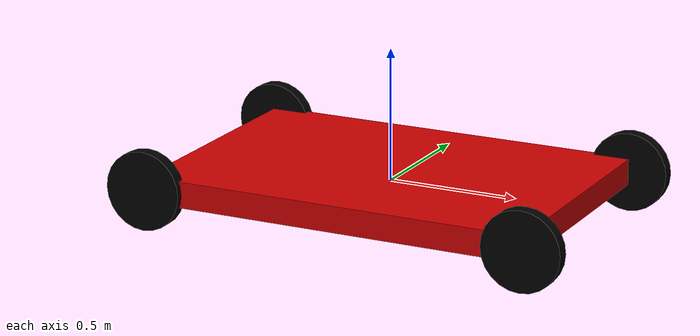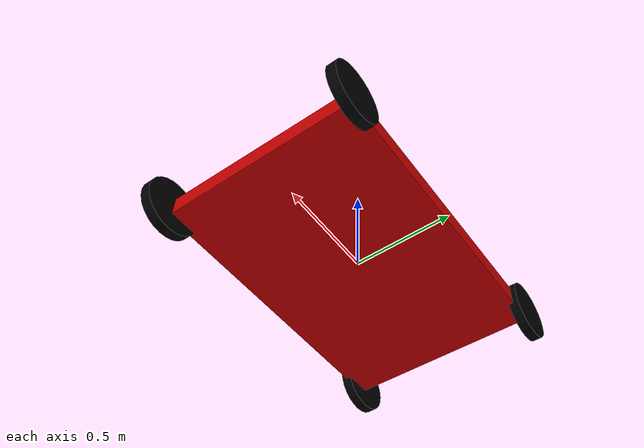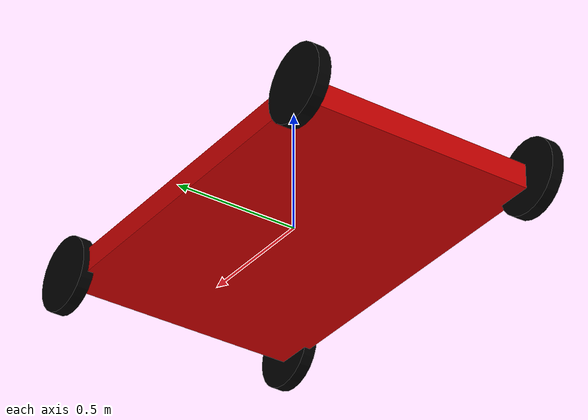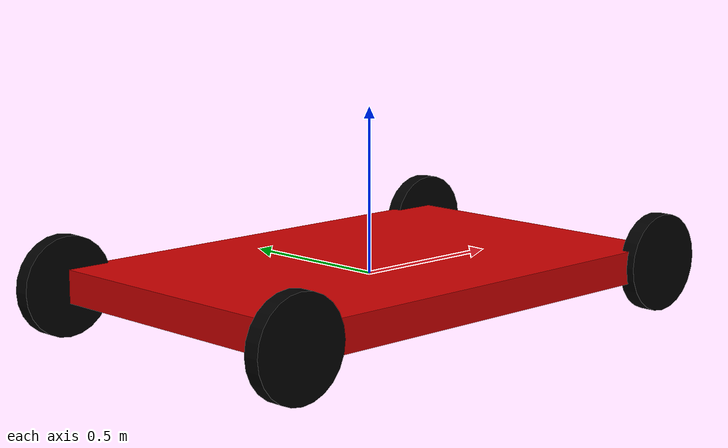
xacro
<?xml version="1.0"?>
<!-- Basic differential drive mobile base -->
<robot xmlns:xacro="http://www.ros.org/wiki/xacro" name="gripper_robot">
    <xacro:arg name="prefix" default="" />

    <!-- Include the diffbot_description.urdf.xacro -->
    <xacro:include
        filename="$(find bots_description)/ackerman/urdf/ackerman.urdf.xacro" />
    <!-- Import Rviz colors -->
    <xacro:include
        filename="$(find bots_description)/common/urdf/materials.xacro" />

    <link name="motor"/>
    <link name="steering"/>
    <joint name="motor_joint" type="revolute">
        <origin xyz="0 0 0" rpy="0 0 0"/>
        <parent link="base_link"/>
        <child link="motor"/>
        <axis xyz="0 0 1"/>
        <limit lower="-3.14159" upper="3.14159" effort="100" velocity="1"/>

    </joint>
    <joint name="steering_joint" type="revolute">
        <origin xyz="0 0 0" rpy="0 0 0"/>
        <parent link="base_link"/>
        <child link="steering"/>
        <axis xyz="0 0 1"/>
        <limit lower="-3.14159" upper="3.14159" effort="100" velocity="1"/>
    </joint>

  <!-- Tu definición de robot -->

  <!-- Etiqueta ros2_control -->
  <ros2_control name="AckermannHardware" type="system">
    <hardware>
      <plugin>yb_eb/YbEbHw</plugin>

        <param name = "motor_name">motor_joint</param>
        <param name = "steering_name">steering_joint</param>
        <param name = "debug">false</param>
        <param name = "max_forward_motor"> 98.0</param>
        <param name = "min_forward_motor"> 91.0</param>
        <param name = "max_reverse_motor"> 89.0</param>
        <param name = "min_reverse_motor"> 76.0</param>
        <param name = "max_ang_steering"> 115.0</param>
        <param name = "min_ang_steering"> 65.0</param>
        <param name = "create_receive_threading">false</param>

    </hardware>

        <joint name="steering_joint">
          <!-- Command interface to control velocity -->
          <command_interface name="position">
          </command_interface>
          <!-- State interfaces to read position and velocity -->
          <state_interface name="position" >
            </state_interface>
          <state_interface name="velocity" >
            </state_interface>
      </joint>

       <joint name="motor_joint">
          <!-- Command interface to control velocity -->
          <command_interface name="velocity">
          </command_interface>
          <!-- State interfaces to read position and velocity -->
          <state_interface name="position" >
            </state_interface>
          <state_interface name="velocity" >
            </state_interface>
        </joint>
  </ros2_control>

    <!-- Otras definiciones de links y joints -->

</robot>

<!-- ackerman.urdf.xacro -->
<robot name="ackermann_robot" xmlns:xacro="http://www.ros.org/wiki/xacro">

  <!-- Propiedades -->
  <xacro:property name="wheel_radius" value="0.15"/>
  <xacro:property name="wheel_width" value="0.05"/>
  <xacro:property name="wheel_separation" value="1.0"/>
  <xacro:property name="wheelbase" value="1.5"/>
  <xacro:property name="chassis_mass" value="20.0"/>
  <xacro:property name="wheel_mass" value="1.0"/>
  <xacro:property name="PI" value="3.14159265359"/>
  <!-- Chasis -->
  <link name="base_link"/>
<!-- chasis link -->
  <link name="chasis_link">
      <visual>
      <geometry>
        <box size="${wheelbase} ${wheel_separation} 0.1"/>
      </geometry>
      <material name="red"/>
    </visual>
    <collision>
      <geometry>
        <box size="${wheelbase} ${wheel_separation} 0.1"/>
      </geometry>
    </collision>
    <inertial>
      <mass value="${chassis_mass}"/>
      <origin xyz="0 0 0"/>
      <inertia ixx="0.5" ixy="0.0" ixz="0.0" iyy="0.5" iyz="0.0" izz="0.5"/>
    </inertial>
  </link>

  <joint name="chasis_joint" type="fixed">
    <parent link="base_link"/>
    <child link="chasis_link"/>
    <origin xyz="0 0 0" rpy="0 0 0"/>
  </joint>

  <!-- Ruedas Traseras -->
  <link name="left_rear_wheel">
    <visual>
      <geometry>
        <cylinder length="${wheel_width}" radius="${wheel_radius}"/>
      </geometry>
      <material name="black"/>
    </visual>
    <collision>
      <geometry>
        <cylinder length="${wheel_width}" radius="${wheel_radius}"/>
      </geometry>
    </collision>
    <inertial>
      <mass value="${wheel_mass}"/>
      <origin xyz="0 0 0"/>
      <inertia ixx="0.01" ixy="0.0" ixz="0.0" iyy="0.01" iyz="0.0" izz="0.01"/>
    </inertial>
  </link>
  <link name="right_rear_wheel">
    <visual>
      <geometry>
        <cylinder length="${wheel_width}" radius="${wheel_radius}"/>
      </geometry>
      <material name="black"/>
    </visual>
    <collision>
      <geometry>
        <cylinder length="${wheel_width}" radius="${wheel_radius}"/>
      </geometry>
    </collision>
    <inertial>
      <mass value="${wheel_mass}"/>
      <origin xyz="0 0 0"/>
      <inertia ixx="0.01" ixy="0.0" ixz="0.0" iyy="0.01" iyz="0.0" izz="0.01"/>
    </inertial>
  </link>

  <!-- Ruedas Delanteras -->
  <link name="left_front_wheel">
    <visual>
      <geometry>
        <cylinder length="${wheel_width}" radius="${wheel_radius}"/>
      </geometry>
      <material name="black"/>
    </visual>
    <collision>
      <geometry>
        <cylinder length="${wheel_width}" radius="${wheel_radius}"/>
      </geometry>
    </collision>
    <inertial>
      <mass value="${wheel_mass}"/>
      <origin xyz="0 0 0"/>
      <inertia ixx="0.01" ixy="0.0" ixz="0.0" iyy="0.01" iyz="0.0" izz="0.01"/>
    </inertial>
  </link>
  <link name="right_front_wheel">
    <visual>
      <geometry>
        <cylinder length="${wheel_width}" radius="${wheel_radius}"/>
      </geometry>
      <material name="black"/>
    </visual>
    <collision>
      <geometry>
        <cylinder length="${wheel_width}" radius="${wheel_radius}"/>
      </geometry>
    </collision>
    <inertial>
      <mass value="${wheel_mass}"/>
      <origin xyz="0 0 0"/>
      <inertia ixx="0.01" ixy="0.0" ixz="0.0" iyy="0.01" iyz="0.0" izz="0.01"/>
    </inertial>
  </link>

  <!-- Juntas de las Ruedas -->
  <joint name="left_rear_wheel_joint" type="continuous">
    <parent link="base_link"/>
    <child link="left_rear_wheel"/>
    <origin xyz="-${wheelbase / 2} ${wheel_separation / 2} 0" rpy="${PI/2} 0 0"/>
    <axis xyz="0 0 1"/>
  </joint>
  <joint name="right_rear_wheel_joint" type="continuous">
    <parent link="base_link"/>
    <child link="right_rear_wheel"/>
    <origin xyz="-${wheelbase / 2} -${wheel_separation / 2} 0 " rpy="${PI/2} 0 0"/>
    <axis xyz="0 0 1"/>
  </joint>
  <joint name="left_front_wheel_joint" type="revolute">
    <parent link="base_link"/>
    <child link="left_front_wheel"/>
    <origin xyz="${wheelbase / 2} ${wheel_separation / 2} 0" rpy="${PI/2} 0 0"/>
    <axis xyz="0 1 0"/>
    <limit effort="50.0" velocity="1.0" lower="-0.785" upper="0.785"/>
  </joint>

  <joint name="right_front_wheel_joint" type="revolute">
    <parent link="base_link"/>
    <child link="right_front_wheel"/>
    <origin xyz="${wheelbase / 2} -${wheel_separation / 2} 0" rpy="${PI/2} 0 0"/>
    <axis xyz="0 1 0"/>
    <limit effort="50.0" velocity="1.0" lower="-0.785" upper="0.785"/>
  </joint>

</robot>

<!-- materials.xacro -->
<!--
Copied from ROS1 example:
https://github.com/ros-simulation/gazebo_ros_demos/blob/kinetic-devel/rrbot_description/urdf/materials.xacro
-->
<robot>

    <material name="black">
        <color rgba="0.0 0.0 0.0 1.0" />
    </material>

    <material name="blue">
        <color rgba="0.0 0.0 0.8 1.0" />
    </material>

    <material name="green">
        <color rgba="0.0 0.8 0.0 1.0" />
    </material>

    <material name="gray">
        <color rgba="0.2 0.2 0.2 1.0" />
    </material>

    <material name="orange">
        <color rgba="${255/255} ${108/255} ${10/255} 1.0" />
    </material>

    <material name="brown">
        <color rgba="${222/255} ${207/255} ${195/255} 1.0" />
    </material>

    <material name="red">
        <color rgba="0.8 0.0 0.0 1.0" />
    </material>

    <material name="white">
        <color rgba="1.0 1.0 1.0 1.0" />
    </material>

</robot>
